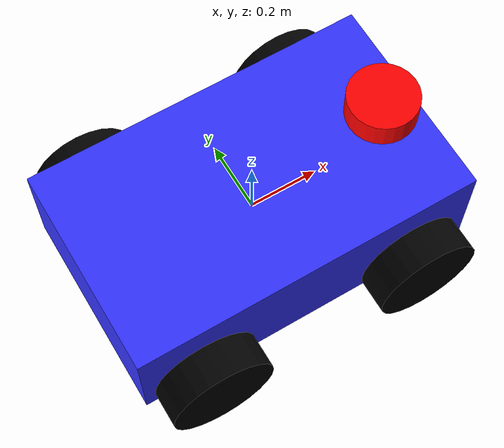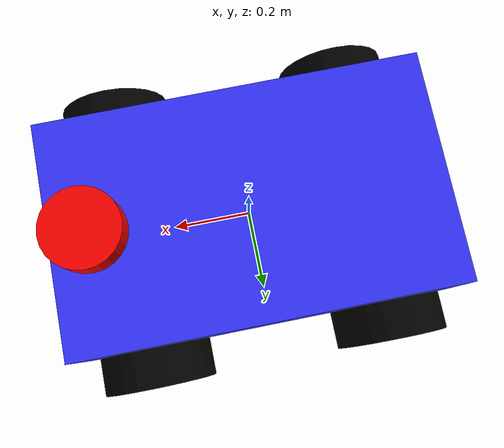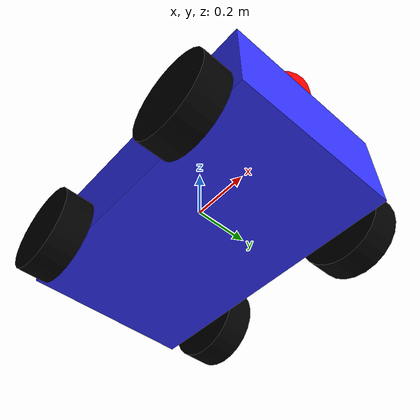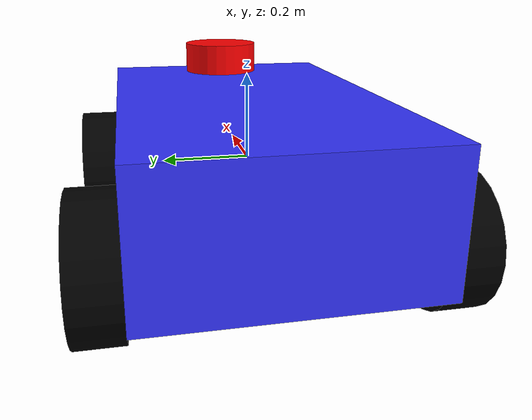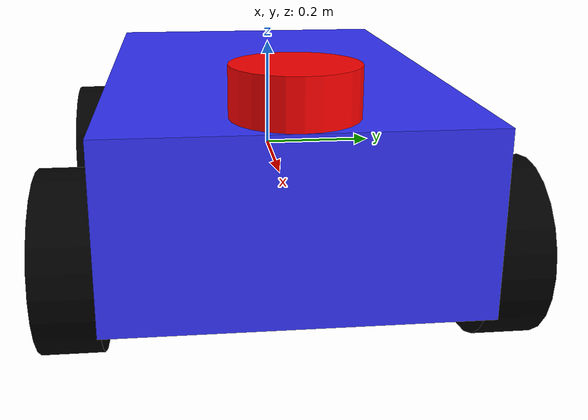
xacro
<?xml version="1.0"?>

<robot name="diff_drive_robo" xmlns:xacro="http://www.ros.org/wiki/xacro">

    <material name="white">
        <color rgba="1 1 1 1" />
    </material>

    <material name="orange">
        <color rgba="1 0.3 0.1 1"/>
    </material>

    <material name="blue">
        <color rgba="0.2 0.2 1 1"/>
    </material>

    <material name="black">
        <color rgba="0 0 0 1"/>
    </material>

    <material name="red">
        <color rgba="1 0 0 1"/>
    </material>

    <xacro:property name="chassis_x" value="1"/>
    <xacro:property name="chassis_y" value="0.6"/>
    <xacro:property name="chassis_z" value="0.3"/>

    <xacro:property name="wheel_radius" value="0.15"/>
    <xacro:property name="wheel_length" value="0.1"/>
    <xacro:property name="wheel_z" value="0.1"/>

    <xacro:property name="lmass" value="0.1" />
    <xacro:property name="llength" value= "0.04"/>
    <xacro:property name="lradius" value="0.05"/>

    <xacro:property name="bw_d" value="2710"/>
    <xacro:property name="pi" value="3.1416"/>

    <xacro:property name="bodymass" value="${bw_d*chassis_x*chassis_y*chassis_z}"/>
    <xacro:property name="wheelmass" value="${bw_d*pi*wheel_radius*wheel_radius*wheel_length}"/>

    <xacro:property name="IZ_w" value="${0.5*wheelmass*wheel_radius*wheel_radius}"/>
    <xacro:property name="I_w" value="${(1.0/12.0)*wheelmass*(3.0*wheel_radius*wheel_radius+wheel_length*wheel_length)}"/>

    <xacro:macro name="inertia_wheel" params="wheelmass I_w IZ_w">
        <inertial>
            <origin rpy="0 0 0" xyz="0 0 0"/>
            <mass value="${wheelmass}"/>
            <inertia ixx="${I_w}" ixy="0.0" ixz="0.0" iyy="${I_w}" iyz="0" izz="${IZ_w}"/>
        </inertial>
    </xacro:macro>

    <xacro:include filename="$(find frobo)/model/robod.gazebo"/>

    <!-- Base link -->
    <link name="base_link"/>

     <!-- Base footprint link -->

    <joint name="footprint_joint" type="fixed">
      <parent link="base_link"/>
      <child link="base_footprint"/>
      <origin xyz= "0 0 0" rpy="0 0 0"/>
    </joint>

     <link name="base_footprint">
     </link>

    <joint name="dummy_joint" type="fixed">
      <parent link="base_link"/>
      <child link="chassis"/>
    </joint>

    <!-- Chassis -->
    <link name="chassis">
        <visual>
            <origin xyz="0 0 0"/>
            <geometry>
                <box size="${chassis_x} ${chassis_y} ${chassis_z}"/>
            </geometry>
            <material name="blue"/>
        </visual>
        <collision>
            <origin xyz="0 0 0"/>
            <geometry>
                <box size="${chassis_x+0.04} ${chassis_y+0.04} ${chassis_z+0.04}"/>
            </geometry>
        </collision>
        <inertial>
            <origin xyz="0 0 0"/>
            <mass value="${bodymass}"/>
            <inertia ixx="${(1/12.0)*bodymass*(chassis_y*chassis_y+chassis_z*chassis_z)}" ixy="0.0" ixz="0.0" iyy="${(1/12.0)*bodymass*(chassis_x*chassis_x+chassis_z*chassis_z)}" iyz="0" izz="${(1/12.0)*bodymass*(chassis_y*chassis_y+chassis_x*chassis_x)}"/>
        </inertial>
    </link>

    <!-- Back right wheel -->
    <joint name="back_right_wheel_joint" type="continuous">
        <parent link="base_link"/>
        <child link="back_right_wheel"/>
        <origin xyz="${-chassis_x/2 + 1.2*wheel_radius} ${-chassis_y/2 - wheel_length/2} ${-wheel_z}"/>
        <axis xyz="0 1 0"/>
    </joint>

    <link name="back_right_wheel">
        <visual>
            <geometry>
                <cylinder radius="${wheel_radius}" length="${wheel_length}"/>
            </geometry>
            <material name="black"/>
            <origin rpy="1.571 0 0" xyz="0 0 0"/>
        </visual>
        <collision>
            <geometry>
                <cylinder radius="${wheel_radius+0.01}}" length="${wheel_length+0.01}"/>
            </geometry>
            <origin rpy="1.571 0 0" xyz="0 0 0"/>
        </collision>
        <xacro:inertia_wheel wheelmass="${wheelmass}" I_w="${I_w}" IZ_w="${IZ_w}"/>
    </link>

    <!-- Back left wheel -->
    <joint name="back_left_wheel_joint" type="continuous">
        <parent link="base_link"/>
        <child link="back_left_wheel"/>
        <origin xyz="${-chassis_x/2 + 1.2*wheel_radius} ${chassis_y/2 + wheel_length/2} ${-wheel_z}"/>
        <axis xyz="0 1 0"/>
    </joint>

    <link name="back_left_wheel">
        <visual>
            <geometry>
                <cylinder radius="${wheel_radius}" length="${wheel_length}"/>
            </geometry>
            <origin rpy="1.571 0 0" xyz="0 0 0"/>
            <material name="black"/>
        </visual>
        <collision>
            <geometry>
                <cylinder radius="${wheel_radius+0.01}" length="${wheel_length+0.01}"/>
            </geometry>
            <origin rpy="1.571 0 0" xyz="0 0 0"/>
        </collision>
        <xacro:inertia_wheel wheelmass="${wheelmass}" I_w="${I_w}" IZ_w="${IZ_w}"/>
    </link>

    <!-- Front right wheel -->
    <joint name="front_right_wheel_joint" type="continuous">
        <parent link="base_link"/>
        <child link="front_right_wheel"/>
        <origin xyz="${chassis_x/2 - 1.2*wheel_radius} ${-chassis_y/2 - wheel_length/2} ${-wheel_z}"/>
        <axis xyz="0 1 0"/>
    </joint>

    <link name="front_right_wheel">
        <visual>
            <geometry>
                <cylinder radius="${wheel_radius}" length="${wheel_length}"/>
            </geometry>
            <material name="black"/>
            <origin rpy="1.571 0 0" xyz="0 0 0"/>
        </visual>
        <collision>
            <geometry>
                <cylinder radius="${wheel_radius+0.01}" length="${wheel_length+0.01}"/>
            </geometry>
            <origin rpy="1.571 0 0" xyz="0 0 0"/>
        </collision>
        <xacro:inertia_wheel wheelmass="${wheelmass}" I_w="${I_w}" IZ_w="${IZ_w}"/>
    </link>

    <!-- Front left wheel -->
    <joint name="front_left_wheel_joint" type="continuous">
        <parent link="base_link"/>
        <child link="front_left_wheel"/>
        <origin xyz="${chassis_x/2 - 1.2*wheel_radius} ${chassis_y/2 + wheel_length/2} ${-wheel_z}"/>
        <axis xyz="0 1 0"/>
    </joint>

    <link name="front_left_wheel">
        <visual>
            <geometry>
                <cylinder radius="${wheel_radius}" length="${wheel_length}"/>
            </geometry>
            <origin rpy="1.571 0 0" xyz="0 0 0"/>
            <material name="black"/>
        </visual>
        <collision>
            <geometry>
                <cylinder radius="${wheel_radius+0.01}" length="${wheel_length+0.01}"/>
            </geometry>
            <origin rpy="1.571 0 0" xyz="0 0 0"/>
        </collision>
        <xacro:inertia_wheel wheelmass="${wheelmass}" I_w="${I_w}" IZ_w="${IZ_w}"/>
    </link>

    <!-- LIDAR -->
    <joint name="lidar_joint" type="fixed">
        <parent link="chassis"/>
        <child link="lidar"/>
        <origin xyz="${chassis_x/2-0.1} 0 ${chassis_z/2 +0.04}" rpy="0 0 0"/>
    </joint>

    <link name="lidar">
        <visual>
            <origin xyz="0 0 0"/>
            <geometry>
                <cylinder radius="0.1" length="0.08"/>
            </geometry>
            <material name="red"/>
        </visual>
        <collision>
            <geometry>
                <cylinder radius="0.1+0.1" length="0.08+0.1"/>
            </geometry>
        </collision>

        <inertial>
            <mass value="${lmass}" />
            <radius value="${lradius}" />
            <length value="${llength}" />
            <inertia ixx="${(1/12) * lmass * (3*lradius*lradius + llength*llength)}" ixy="0.0" ixz="0.0"
                    iyy="${(1/12) * lmass * (3*lradius*lradius + llength*llength)}" iyz="0.0"
                    izz="${(1/2) * lmass * (lradius*lradius)}" />
        </inertial>

    </link>

</robot>
